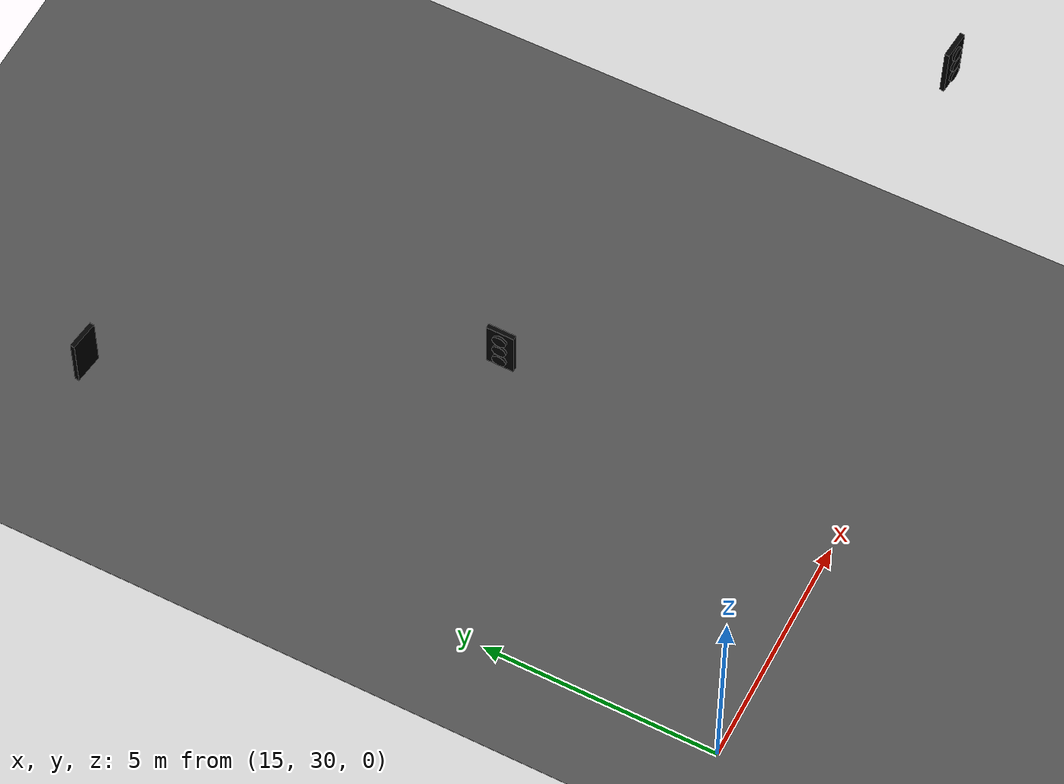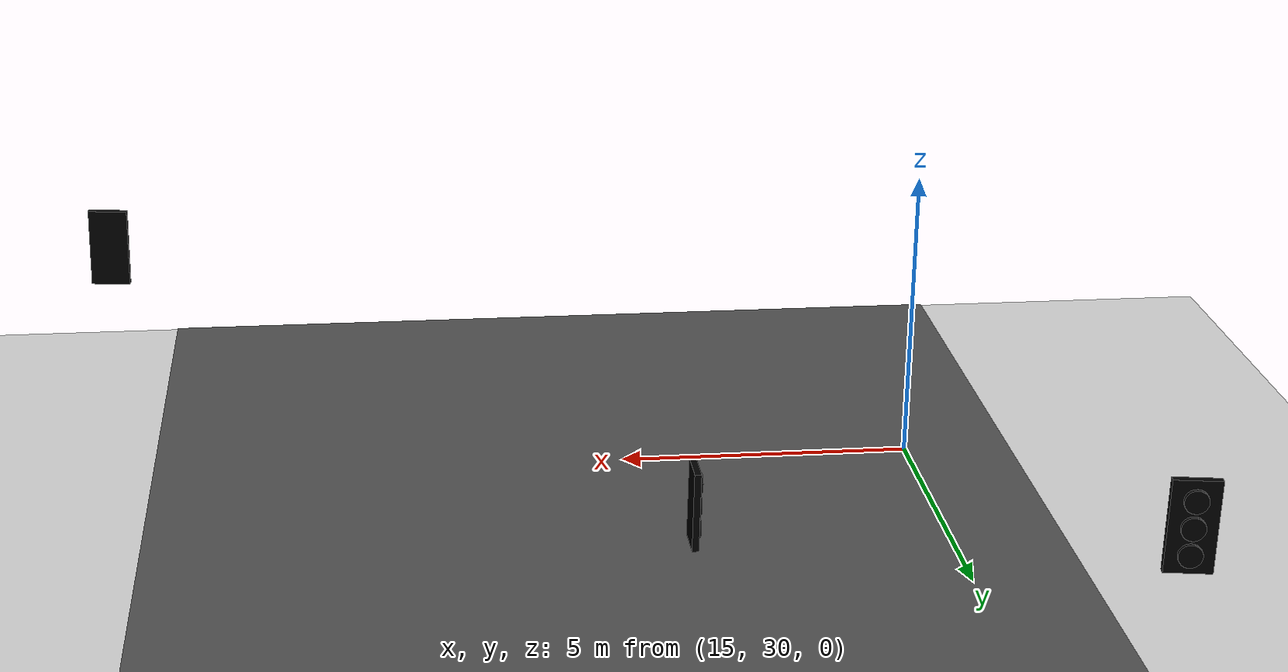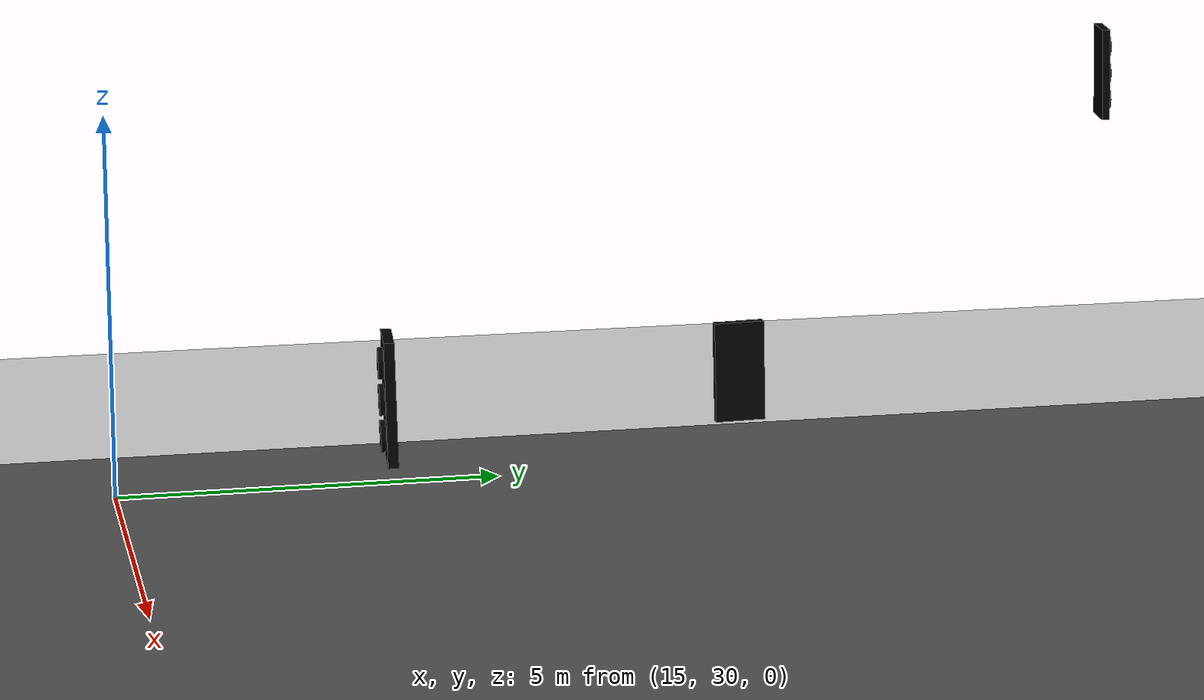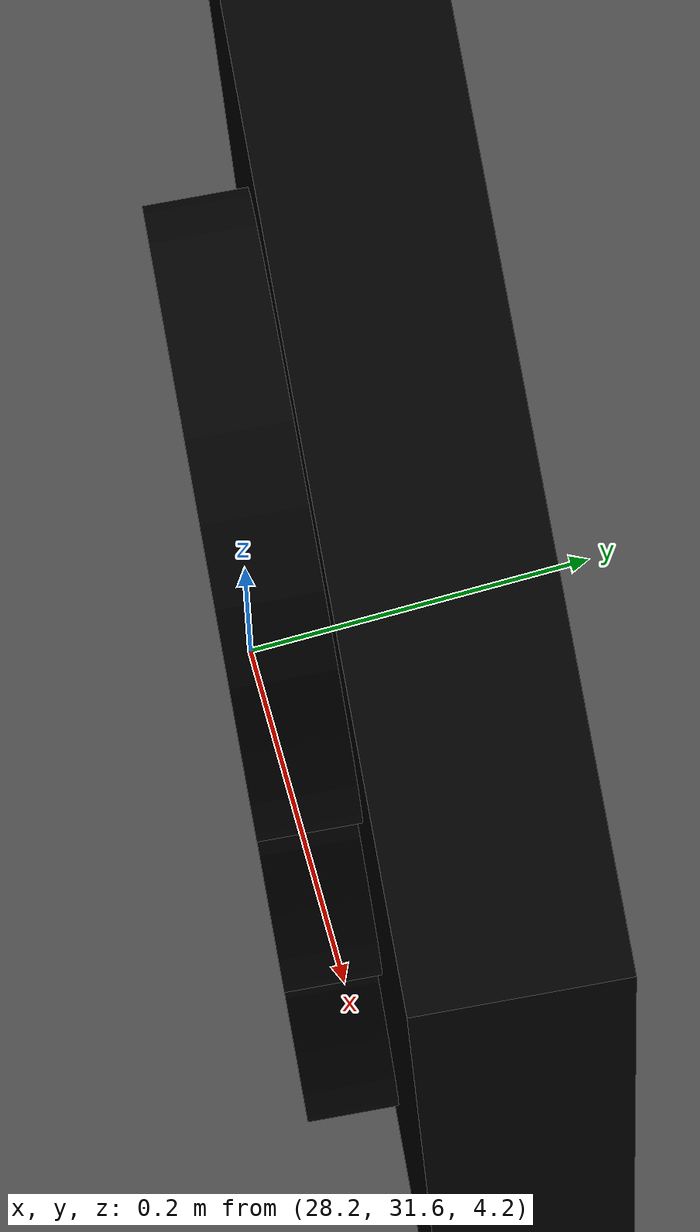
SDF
<sdf version="1.7">
 <world name="default">
  <light name="sun" type="directional">
   <pose>0 0 10 0 -0 0</pose>
   <diffuse>0.8 0.8 0.8 1</diffuse>
   <specular>0.2 0.2 0.2 1</specular>
   <attenuation>
    <range>1000</range>
    <constant>0.9</constant>
    <linear>0.01</linear>
    <quadratic>0.001</quadratic>
   </attenuation>
   <direction>-0.5 0.1 -0.9</direction>
   <spot><inner_angle>0</inner_angle><outer_angle>0</outer_angle><falloff>0</falloff></spot>
  </light>
  <model name="ground_plane">
   <static>1</static>
   <link name="link">
    <collision name="collision">
     <geometry><plane><normal>0 0 1</normal><size>100 100</size></plane></geometry>
     <surface>
      <contact><collide_bitmask>65535</collide_bitmask></contact>
      <friction><ode><mu>100</mu><mu2>50</mu2></ode></friction>
     </surface>
    </collision>
    <visual name="visual">
     <cast_shadows>0</cast_shadows>
     <geometry><plane><normal>0 0 1</normal><size>100 100</size></plane></geometry>
     <material>
      <script><uri>file://media/materials/scripts/gazebo.material</uri><name>Gazebo/Grey</name></script>
     </material>
    </visual>
   </link>
  </model>
  <model name="gazebo_traffic_light">
   <pose>14.7441 43.2147 4.49306 -0.01537 -0.022026 1.43881</pose>
   <plugin name="traffic_light_plugin" filename="/home/cadete/amr_world/ws/install/gazebo_traffic_light/lib/gazebo_traffic_light/libgazebo_traffic_light.so"/>
   <static>0</static>
   <link name="light_fixture">
    <gravity>0</gravity>
    <visual name="visual">
     <pose>0 0 0.535 0 -0 0</pose>
     <geometry><box><size>0.1 0.6 1.2</size></box></geometry>
     <material><ambient>0 0 0 1</ambient><diffuse>0 0 0 1</diffuse><specular>0 0 0 1</specular></material>
    </visual>
    <collision name="collision">
     <pose>0 0 0.535 0 -0 0</pose>
     <geometry><box><size>0.1 0.6 1.2</size></box></geometry>
    </collision>
    <inertial>
     <inertia><ixx>1</ixx><ixy>0</ixy><ixz>0</ixz><iyy>1</iyy><iyz>0</iyz><izz>1</izz></inertia>
     <mass>1</mass>
    </inertial>
   </link>
   <link name="green_off">
    <gravity>0</gravity>
    <pose>0.075 0 0.175 0 1.5707 0</pose>
    <collision name="collision">
     <geometry><cylinder><radius>0.15</radius><length>0.05</length></cylinder></geometry>
    </collision>
    <visual name="visual">
     <geometry><cylinder><radius>0.15</radius><length>0.05</length></cylinder></geometry>
     <material>
      <ambient>0 1 0 1</ambient>
      <diffuse>0 0 0 1</diffuse>
      <specular>0 0 0 1</specular>
      <emissive>0 0 0 1</emissive>
     </material>
    </visual>
    <inertial>
     <inertia><ixx>1</ixx><ixy>0</ixy><ixz>0</ixz><iyy>1</iyy><iyz>0</iyz><izz>1</izz></inertia>
     <mass>1</mass>
    </inertial>
   </link>
   <link name="green_on">
    <gravity>0</gravity>
    <pose>0 0 0.175 0 1.5707 0</pose>
    <collision name="collision">
     <geometry><cylinder><radius>0.15</radius><length>0.002</length></cylinder></geometry>
    </collision>
    <visual name="visual">
     <geometry><cylinder><radius>0.15</radius><length>0.002</length></cylinder></geometry>
     <material>
      <ambient>0 0 0 1</ambient>
      <diffuse>0 0 0 1</diffuse>
      <specular>0 0 0 1</specular>
      <emissive>0 1 0 1</emissive>
     </material>
    </visual>
    <inertial>
     <inertia><ixx>1</ixx><ixy>0</ixy><ixz>0</ixz><iyy>1</iyy><iyz>0</iyz><izz>1</izz></inertia>
     <mass>1</mass>
    </inertial>
   </link>
   <link name="yellow_off">
    <gravity>0</gravity>
    <pose>0.075 0 0.525 0 1.5707 0</pose>
    <collision name="collision">
     <geometry><cylinder><radius>0.15</radius><length>0.05</length></cylinder></geometry>
    </collision>
    <visual name="visual">
     <geometry><cylinder><radius>0.15</radius><length>0.05</length></cylinder></geometry>
     <material>
      <ambient>1 1 0 1</ambient>
      <diffuse>0 0 0 1</diffuse>
      <specular>0 0 0 1</specular>
      <emissive>0 0 0 1</emissive>
     </material>
    </visual>
    <inertial>
     <inertia><ixx>1</ixx><ixy>0</ixy><ixz>0</ixz><iyy>1</iyy><iyz>0</iyz><izz>1</izz></inertia>
     <mass>1</mass>
    </inertial>
   </link>
   <link name="yellow_on">
    <gravity>0</gravity>
    <pose>0 0 0.525 0 1.5707 0</pose>
    <collision name="collision">
     <geometry><cylinder><radius>0.15</radius><length>0.002</length></cylinder></geometry>
    </collision>
    <visual name="visual">
     <geometry><cylinder><radius>0.15</radius><length>0.002</length></cylinder></geometry>
     <material>
      <ambient>0 0 0 1</ambient>
      <diffuse>0 0 0 1</diffuse>
      <specular>0 0 0 1</specular>
      <emissive>1 1 0 1</emissive>
     </material>
    </visual>
    <inertial>
     <inertia><ixx>1</ixx><ixy>0</ixy><ixz>0</ixz><iyy>1</iyy><iyz>0</iyz><izz>1</izz></inertia>
     <mass>1</mass>
    </inertial>
   </link>
   <link name="red_off">
    <gravity>0</gravity>
    <pose>0.075 0 0.875 0 1.5707 0</pose>
    <collision name="collision">
     <geometry><cylinder><radius>0.15</radius><length>0.05</length></cylinder></geometry>
    </collision>
    <visual name="visual">
     <geometry><cylinder><radius>0.15</radius><length>0.05</length></cylinder></geometry>
     <material>
      <ambient>1 0 0 1</ambient>
      <diffuse>0 0 0 1</diffuse>
      <specular>0 0 0 1</specular>
      <emissive>0 0 0 1</emissive>
     </material>
    </visual>
    <inertial>
     <inertia><ixx>1</ixx><ixy>0</ixy><ixz>0</ixz><iyy>1</iyy><iyz>0</iyz><izz>1</izz></inertia>
     <mass>1</mass>
    </inertial>
   </link>
   <link name="red_on">
    <gravity>0</gravity>
    <pose>0 0 0.875 0 1.5707 0</pose>
    <collision name="collision">
     <geometry><cylinder><radius>0.15</radius><length>0.002</length></cylinder></geometry>
    </collision>
    <visual name="visual">
     <geometry><cylinder><radius>0.15</radius><length>0.002</length></cylinder></geometry>
     <material>
      <ambient>0 0 0 1</ambient>
      <diffuse>0 0 0 1</diffuse>
      <specular>0 0 0 1</specular>
      <emissive>1 0 0 1</emissive>
     </material>
    </visual>
    <inertial>
     <inertia><ixx>1</ixx><ixy>0</ixy><ixz>0</ixz><iyy>1</iyy><iyz>0</iyz><izz>1</izz></inertia>
     <mass>1</mass>
    </inertial>
   </link>
   <joint name="green_switch" type="prismatic">
    <parent>green_off</parent>
    <child>green_on</child>
    <axis>
     <xyz>0 0 1</xyz>
     <limit><lower>0</lower><upper>0.101</upper></limit>
     <dynamics><spring_reference>0</spring_reference><spring_stiffness>0</spring_stiffness></dynamics>
    </axis>
   </joint>
   <joint name="green_base" type="fixed"><parent>light_fixture</parent><child>green_off</child></joint>
   <joint name="yellow_switch" type="prismatic">
    <parent>yellow_off</parent>
    <child>yellow_on</child>
    <axis>
     <xyz>0 0 1</xyz>
     <limit><lower>0</lower><upper>0.101</upper></limit>
     <dynamics><spring_reference>0</spring_reference><spring_stiffness>0</spring_stiffness></dynamics>
    </axis>
   </joint>
   <joint name="yellow_base" type="fixed"><parent>light_fixture</parent><child>yellow_off</child></joint>
   <joint name="red_switch" type="prismatic">
    <parent>red_off</parent>
    <child>red_on</child>
    <axis>
     <xyz>0 0 1</xyz>
     <limit><lower>0</lower><upper>0.101</upper></limit>
     <dynamics><spring_reference>0</spring_reference><spring_stiffness>0</spring_stiffness></dynamics>
    </axis>
   </joint>
   <joint name="red_base" type="fixed"><parent>light_fixture</parent><child>red_off</child></joint>
  </model>
  <gravity>0 0 -9.8</gravity>
  <magnetic_field>6e-06 2.3e-05 -4.2e-05</magnetic_field>
  <atmosphere type="adiabatic"/>
  <physics type="ode">
   <max_step_size>0.001</max_step_size>
   <real_time_factor>1</real_time_factor>
   <real_time_update_rate>1000</real_time_update_rate>
  </physics>
  <scene><ambient>0.4 0.4 0.4 1</ambient><background>0.7 0.7 0.7 1</background><shadows>1</shadows></scene>
  <spherical_coordinates>
   <surface_model>EARTH_WGS84</surface_model>
   <latitude_deg>0</latitude_deg>
   <longitude_deg>0</longitude_deg>
   <elevation>0</elevation>
   <heading_deg>0</heading_deg>
  </spherical_coordinates>
  <audio><device>default</device></audio>
  <model name="gazebo_traffic_light_clone">
   <plugin name="traffic_light_plugin" filename="/home/cadete/amr_world/ws/install/gazebo_traffic_light/lib/gazebo_traffic_light/libgazebo_traffic_light.so"/>
   <static>0</static>
   <link name="light_fixture">
    <gravity>0</gravity>
    <visual name="visual">
     <pose>0 0 0.535 0 -0 0</pose>
     <geometry><box><size>0.1 0.6 1.2</size></box></geometry>
     <material><ambient>0 0 0 1</ambient><diffuse>0 0 0 1</diffuse><specular>0 0 0 1</specular></material>
    </visual>
    <collision name="collision">
     <pose>0 0 0.535 0 -0 0</pose>
     <geometry><box><size>0.1 0.6 1.2</size></box></geometry>
    </collision>
    <inertial>
     <inertia><ixx>1</ixx><ixy>0</ixy><ixz>0</ixz><iyy>1</iyy><iyz>0</iyz><izz>1</izz></inertia>
     <mass>1</mass>
    </inertial>
   </link>
   <link name="green_off">
    <gravity>0</gravity>
    <pose>0.075 0 0.175 0 1.5707 0</pose>
    <collision name="collision">
     <geometry><cylinder><radius>0.15</radius><length>0.05</length></cylinder></geometry>
    </collision>
    <visual name="visual">
     <geometry><cylinder><radius>0.15</radius><length>0.05</length></cylinder></geometry>
     <material>
      <ambient>0 1 0 1</ambient>
      <diffuse>0 0 0 1</diffuse>
      <specular>0 0 0 1</specular>
      <emissive>0 0 0 1</emissive>
     </material>
    </visual>
    <inertial>
     <inertia><ixx>1</ixx><ixy>0</ixy><ixz>0</ixz><iyy>1</iyy><iyz>0</iyz><izz>1</izz></inertia>
     <mass>1</mass>
    </inertial>
   </link>
   <link name="green_on">
    <gravity>0</gravity>
    <pose>0 0 0.175 0 1.5707 0</pose>
    <collision name="collision">
     <geometry><cylinder><radius>0.15</radius><length>0.002</length></cylinder></geometry>
    </collision>
    <visual name="visual">
     <geometry><cylinder><radius>0.15</radius><length>0.002</length></cylinder></geometry>
     <material>
      <ambient>0 0 0 1</ambient>
      <diffuse>0 0 0 1</diffuse>
      <specular>0 0 0 1</specular>
      <emissive>0 1 0 1</emissive>
     </material>
    </visual>
    <inertial>
     <inertia><ixx>1</ixx><ixy>0</ixy><ixz>0</ixz><iyy>1</iyy><iyz>0</iyz><izz>1</izz></inertia>
     <mass>1</mass>
    </inertial>
   </link>
   <link name="yellow_off">
    <gravity>0</gravity>
    <pose>0.075 0 0.525 0 1.5707 0</pose>
    <collision name="collision">
     <geometry><cylinder><radius>0.15</radius><length>0.05</length></cylinder></geometry>
    </collision>
    <visual name="visual">
     <geometry><cylinder><radius>0.15</radius><length>0.05</length></cylinder></geometry>
     <material>
      <ambient>1 1 0 1</ambient>
      <diffuse>0 0 0 1</diffuse>
      <specular>0 0 0 1</specular>
      <emissive>0 0 0 1</emissive>
     </material>
    </visual>
    <inertial>
     <inertia><ixx>1</ixx><ixy>0</ixy><ixz>0</ixz><iyy>1</iyy><iyz>0</iyz><izz>1</izz></inertia>
     <mass>1</mass>
    </inertial>
   </link>
   <link name="yellow_on">
    <gravity>0</gravity>
    <pose>0 0 0.525 0 1.5707 0</pose>
    <collision name="collision">
     <geometry><cylinder><radius>0.15</radius><length>0.002</length></cylinder></geometry>
    </collision>
    <visual name="visual">
     <geometry><cylinder><radius>0.15</radius><length>0.002</length></cylinder></geometry>
     <material>
      <ambient>0 0 0 1</ambient>
      <diffuse>0 0 0 1</diffuse>
      <specular>0 0 0 1</specular>
      <emissive>1 1 0 1</emissive>
     </material>
    </visual>
    <inertial>
     <inertia><ixx>1</ixx><ixy>0</ixy><ixz>0</ixz><iyy>1</iyy><iyz>0</iyz><izz>1</izz></inertia>
     <mass>1</mass>
    </inertial>
   </link>
   <link name="red_off">
    <gravity>0</gravity>
    <pose>0.075 0 0.875 0 1.5707 0</pose>
    <collision name="collision">
     <geometry><cylinder><radius>0.15</radius><length>0.05</length></cylinder></geometry>
    </collision>
    <visual name="visual">
     <geometry><cylinder><radius>0.15</radius><length>0.05</length></cylinder></geometry>
     <material>
      <ambient>1 0 0 1</ambient>
      <diffuse>0 0 0 1</diffuse>
      <specular>0 0 0 1</specular>
      <emissive>0 0 0 1</emissive>
     </material>
    </visual>
    <inertial>
     <inertia><ixx>1</ixx><ixy>0</ixy><ixz>0</ixz><iyy>1</iyy><iyz>0</iyz><izz>1</izz></inertia>
     <mass>1</mass>
    </inertial>
   </link>
   <link name="red_on">
    <gravity>0</gravity>
    <pose>0 0 0.875 0 1.5707 0</pose>
    <collision name="collision">
     <geometry><cylinder><radius>0.15</radius><length>0.002</length></cylinder></geometry>
    </collision>
    <visual name="visual">
     <geometry><cylinder><radius>0.15</radius><length>0.002</length></cylinder></geometry>
     <material>
      <ambient>0 0 0 1</ambient>
      <diffuse>0 0 0 1</diffuse>
      <specular>0 0 0 1</specular>
      <emissive>1 0 0 1</emissive>
     </material>
    </visual>
    <inertial>
     <inertia><ixx>1</ixx><ixy>0</ixy><ixz>0</ixz><iyy>1</iyy><iyz>0</iyz><izz>1</izz></inertia>
     <mass>1</mass>
    </inertial>
   </link>
   <joint name="green_switch" type="prismatic">
    <parent>green_off</parent>
    <child>green_on</child>
    <axis>
     <xyz>0 0 1</xyz>
     <limit><lower>0</lower><upper>0.101</upper></limit>
     <dynamics><spring_reference>0</spring_reference><spring_stiffness>0</spring_stiffness></dynamics>
    </axis>
   </joint>
   <joint name="green_base" type="fixed"><parent>light_fixture</parent><child>green_off</child></joint>
   <joint name="yellow_switch" type="prismatic">
    <parent>yellow_off</parent>
    <child>yellow_on</child>
    <axis>
     <xyz>0 0 1</xyz>
     <limit><lower>0</lower><upper>0.101</upper></limit>
     <dynamics><spring_reference>0</spring_reference><spring_stiffness>0</spring_stiffness></dynamics>
    </axis>
   </joint>
   <joint name="yellow_base" type="fixed"><parent>light_fixture</parent><child>yellow_off</child></joint>
   <joint name="red_switch" type="prismatic">
    <parent>red_off</parent>
    <child>red_on</child>
    <axis>
     <xyz>0 0 1</xyz>
     <limit><lower>0</lower><upper>0.101</upper></limit>
     <dynamics><spring_reference>0</spring_reference><spring_stiffness>0</spring_stiffness></dynamics>
    </axis>
   </joint>
   <joint name="red_base" type="fixed"><parent>light_fixture</parent><child>red_off</child></joint>
   <pose>28.3741 31.6669 4.26689 0.016196 0.021396 -1.66411</pose>
  </model>
  <model name="gazebo_traffic_light_clone_0">
   <plugin name="traffic_light_plugin" filename="/home/cadete/amr_world/ws/install/gazebo_traffic_light/lib/gazebo_traffic_light/libgazebo_traffic_light.so"/>
   <static>0</static>
   <link name="light_fixture">
    <gravity>0</gravity>
    <visual name="visual">
     <pose>0 0 0.535 0 -0 0</pose>
     <geometry><box><size>0.1 0.6 1.2</size></box></geometry>
     <material><ambient>0 0 0 1</ambient><diffuse>0 0 0 1</diffuse><specular>0 0 0 1</specular></material>
    </visual>
    <collision name="collision">
     <pose>0 0 0.535 0 -0 0</pose>
     <geometry><box><size>0.1 0.6 1.2</size></box></geometry>
    </collision>
    <inertial>
     <inertia><ixx>1</ixx><ixy>0</ixy><ixz>0</ixz><iyy>1</iyy><iyz>0</iyz><izz>1</izz></inertia>
     <mass>1</mass>
    </inertial>
   </link>
   <link name="green_off">
    <gravity>0</gravity>
    <pose>0.075 0 0.175 0 1.5707 0</pose>
    <collision name="collision">
     <geometry><cylinder><radius>0.15</radius><length>0.05</length></cylinder></geometry>
    </collision>
    <visual name="visual">
     <geometry><cylinder><radius>0.15</radius><length>0.05</length></cylinder></geometry>
     <material>
      <ambient>0 1 0 1</ambient>
      <diffuse>0 0 0 1</diffuse>
      <specular>0 0 0 1</specular>
      <emissive>0 0 0 1</emissive>
     </material>
    </visual>
    <inertial>
     <inertia><ixx>1</ixx><ixy>0</ixy><ixz>0</ixz><iyy>1</iyy><iyz>0</iyz><izz>1</izz></inertia>
     <mass>1</mass>
    </inertial>
   </link>
   <link name="green_on">
    <gravity>0</gravity>
    <pose>0 0 0.175 0 1.5707 0</pose>
    <collision name="collision">
     <geometry><cylinder><radius>0.15</radius><length>0.002</length></cylinder></geometry>
    </collision>
    <visual name="visual">
     <geometry><cylinder><radius>0.15</radius><length>0.002</length></cylinder></geometry>
     <material>
      <ambient>0 0 0 1</ambient>
      <diffuse>0 0 0 1</diffuse>
      <specular>0 0 0 1</specular>
      <emissive>0 1 0 1</emissive>
     </material>
    </visual>
    <inertial>
     <inertia><ixx>1</ixx><ixy>0</ixy><ixz>0</ixz><iyy>1</iyy><iyz>0</iyz><izz>1</izz></inertia>
     <mass>1</mass>
    </inertial>
   </link>
   <link name="yellow_off">
    <gravity>0</gravity>
    <pose>0.075 0 0.525 0 1.5707 0</pose>
    <collision name="collision">
     <geometry><cylinder><radius>0.15</radius><length>0.05</length></cylinder></geometry>
    </collision>
    <visual name="visual">
     <geometry><cylinder><radius>0.15</radius><length>0.05</length></cylinder></geometry>
     <material>
      <ambient>1 1 0 1</ambient>
      <diffuse>0 0 0 1</diffuse>
      <specular>0 0 0 1</specular>
      <emissive>0 0 0 1</emissive>
     </material>
    </visual>
    <inertial>
     <inertia><ixx>1</ixx><ixy>0</ixy><ixz>0</ixz><iyy>1</iyy><iyz>0</iyz><izz>1</izz></inertia>
     <mass>1</mass>
    </inertial>
   </link>
   <link name="yellow_on">
    <gravity>0</gravity>
    <pose>0 0 0.525 0 1.5707 0</pose>
    <collision name="collision">
     <geometry><cylinder><radius>0.15</radius><length>0.002</length></cylinder></geometry>
    </collision>
    <visual name="visual">
     <geometry><cylinder><radius>0.15</radius><length>0.002</length></cylinder></geometry>
     <material>
      <ambient>0 0 0 1</ambient>
      <diffuse>0 0 0 1</diffuse>
      <specular>0 0 0 1</specular>
      <emissive>1 1 0 1</emissive>
     </material>
    </visual>
    <inertial>
     <inertia><ixx>1</ixx><ixy>0</ixy><ixz>0</ixz><iyy>1</iyy><iyz>0</iyz><izz>1</izz></inertia>
     <mass>1</mass>
    </inertial>
   </link>
   <link name="red_off">
    <gravity>0</gravity>
    <pose>0.075 0 0.875 0 1.5707 0</pose>
    <collision name="collision">
     <geometry><cylinder><radius>0.15</radius><length>0.05</length></cylinder></geometry>
    </collision>
    <visual name="visual">
     <geometry><cylinder><radius>0.15</radius><length>0.05</length></cylinder></geometry>
     <material>
      <ambient>1 0 0 1</ambient>
      <diffuse>0 0 0 1</diffuse>
      <specular>0 0 0 1</specular>
      <emissive>0 0 0 1</emissive>
     </material>
    </visual>
    <inertial>
     <inertia><ixx>1</ixx><ixy>0</ixy><ixz>0</ixz><iyy>1</iyy><iyz>0</iyz><izz>1</izz></inertia>
     <mass>1</mass>
    </inertial>
   </link>
   <link name="red_on">
    <gravity>0</gravity>
    <pose>0 0 0.875 0 1.5707 0</pose>
    <collision name="collision">
     <geometry><cylinder><radius>0.15</radius><length>0.002</length></cylinder></geometry>
    </collision>
    <visual name="visual">
     <geometry><cylinder><radius>0.15</radius><length>0.002</length></cylinder></geometry>
     <material>
      <ambient>0 0 0 1</ambient>
      <diffuse>0 0 0 1</diffuse>
      <specular>0 0 0 1</specular>
      <emissive>1 0 0 1</emissive>
     </material>
    </visual>
    <inertial>
     <inertia><ixx>1</ixx><ixy>0</ixy><ixz>0</ixz><iyy>1</iyy><iyz>0</iyz><izz>1</izz></inertia>
     <mass>1</mass>
    </inertial>
   </link>
   <joint name="green_switch" type="prismatic">
    <parent>green_off</parent>
    <child>green_on</child>
    <axis>
     <xyz>0 0 1</xyz>
     <limit><lower>0</lower><upper>0.101</upper></limit>
     <dynamics><spring_reference>0</spring_reference><spring_stiffness>0</spring_stiffness></dynamics>
    </axis>
   </joint>
   <joint name="green_base" type="fixed"><parent>light_fixture</parent><child>green_off</child></joint>
   <joint name="yellow_switch" type="prismatic">
    <parent>yellow_off</parent>
    <child>yellow_on</child>
    <axis>
     <xyz>0 0 1</xyz>
     <limit><lower>0</lower><upper>0.101</upper></limit>
     <dynamics><spring_reference>0</spring_reference><spring_stiffness>0</spring_stiffness></dynamics>
    </axis>
   </joint>
   <joint name="yellow_base" type="fixed"><parent>light_fixture</parent><child>yellow_off</child></joint>
   <joint name="red_switch" type="prismatic">
    <parent>red_off</parent>
    <child>red_on</child>
    <axis>
     <xyz>0 0 1</xyz>
     <limit><lower>0</lower><upper>0.101</upper></limit>
     <dynamics><spring_reference>0</spring_reference><spring_stiffness>0</spring_stiffness></dynamics>
    </axis>
   </joint>
   <joint name="red_base" type="fixed"><parent>light_fixture</parent><child>red_off</child></joint>
   <pose>19.7713 37.0927 2.0157 -0.019863 0.01806 3.13767</pose>
  </model>
  <model name="asphalt_road">
   <link name="link">
    <inertial>
     <mass>1</mass>
     <inertia><ixx>1</ixx><ixy>0</ixy><ixz>0</ixz><iyy>1</iyy><iyz>0</iyz><izz>1</izz></inertia>
    </inertial>
    <visual name="visual">
     <cast_shadows>0</cast_shadows>
     <geometry><box><size>15 120 0.01</size></box></geometry>
     <material>
      <script>
       <uri>model://asphalt_plane/materials/scripts</uri>
       <uri>model://asphalt_plane/materials/textures</uri>
       <name>vrc/asphalt</name>
      </script>
      <shader type="pixel"><normal_map>__default__</normal_map></shader>
      <ambient>0.5 0.5 0.5 1</ambient>
      <diffuse>0.5 0.5 0.5 1</diffuse>
      <specular>0.2 0.2 0.2 1</specular>
      <emissive>0 0 0 1</emissive>
     </material>
    </visual>
    <collision name="collision">
     <geometry><box><size>20 20 0.1</size></box></geometry>
     <surface>
      <friction>
       <ode><mu>1</mu><mu2>1</mu2><fdir1>0 0 0</fdir1><slip1>0</slip1><slip2>0</slip2></ode>
       <torsional>
        <coefficient>1</coefficient>
        <patch_radius>0</patch_radius>
        <surface_radius>0</surface_radius>
        <use_patch_radius>1</use_patch_radius>
        <ode><slip>0</slip></ode>
       </torsional>
      </friction>
      <bounce><restitution_coefficient>0</restitution_coefficient><threshold>1e+06</threshold></bounce>
      <contact>
       <collide_without_contact>0</collide_without_contact>
       <collide_without_contact_bitmask>1</collide_without_contact_bitmask>
       <collide_bitmask>1</collide_bitmask>
       <ode>
        <soft_cfm>0</soft_cfm>
        <soft_erp>0.2</soft_erp>
        <kp>1e+13</kp>
        <kd>1</kd>
        <max_vel>0.01</max_vel>
        <min_depth>0</min_depth>
       </ode>
       <bullet>
        <split_impulse>1</split_impulse>
        <split_impulse_penetration_threshold>-0.01</split_impulse_penetration_threshold>
        <soft_cfm>0</soft_cfm>
        <soft_erp>0.2</soft_erp>
        <kp>1e+13</kp>
        <kd>1</kd>
       </bullet>
      </contact>
     </surface>
    </collision>
   </link>
   <static>1</static>
   <pose>20.6317 -6.62184 -0.00249 0 -0 0</pose>
  </model>
 </world>
</sdf>
